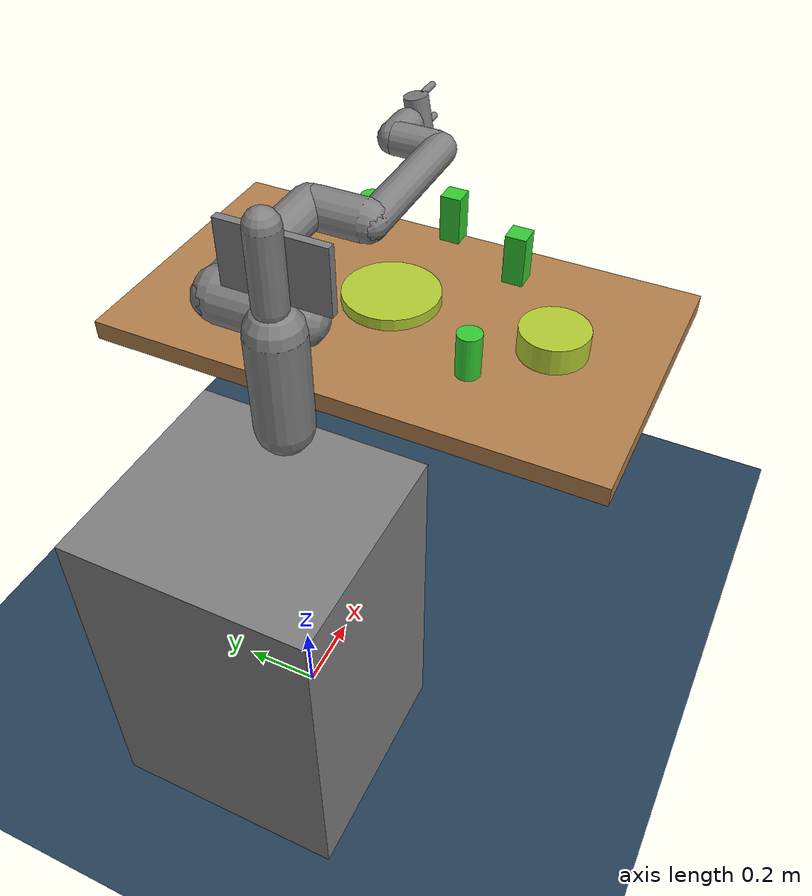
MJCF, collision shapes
<mujoco model="sawyer_kitchen_counter_scene">
  <include file="sawyer-gripper.xml"/>
  <include file="block_dependencies.xml"/>
  <include file="wall_dependencies.xml"/>

  <statistic center="0.3 0 0.4" extent="0.8"/>
  <option timestep="0.002" iterations="100" noslip_iterations="20"/>

  <visual>
    <headlight diffuse="0.6 0.6 0.6" ambient="0.3 0.3 0.3" specular="0 0 0"/>
    <rgba haze="0.15 0.25 0.35 1"/>
    <global azimuth="140" elevation="-20"/>
    <map znear="0.01" zfar="50.0"/>
  </visual>

  <asset>
    <texture type="skybox" builtin="gradient"
             rgb1="0.3 0.5 0.7" rgb2="0 0 0"
             width="512" height="3072"/>
    <texture type="2d" name="groundplane" builtin="checker"
             mark="edge"
             rgb1="0.2 0.3 0.4" rgb2="0.1 0.2 0.3"
             markrgb="0.8 0.8 0.8"
             width="300" height="300"/>
    <material name="groundplane" texture="groundplane"
              texuniform="true" texrepeat="5 5"
              reflectance="0.2"/>
  </asset>

  <asset>
    <texture name="T_table" type="cube" file="textures/wood2.png"/>
    <material name="table_wood" texture="T_table"
              shininess=".3" specular="0.5"/>

    <mesh name="tablebody" file="../meshes/table/tablebody.stl"/>
    <mesh name="tabletop" file="../meshes/table/tabletop.stl"/>
    <mesh name="ms_bowl_white"
      file="../../external_assets/mujoco_scanned_objects/models/Threshold_Bead_Cereal_Bowl_White/model.obj"/>
    <mesh name="ms_plate_ruby"
      file="../../external_assets/mujoco_scanned_objects/models/Threshold_Bistro_Ceramic_Dinner_Plate_Ruby_Ring/model.obj"/>
    <mesh name="ms_can_twinlab"
      file="../../external_assets/mujoco_scanned_objects/models/Twinlab_Premium_Creatine_Fuel_Powder/model.obj"/>
    <mesh name="ms_bottle_elderberry"
      file="../../external_assets/mujoco_scanned_objects/models/Black_Elderberry_Syrup_54_oz_Gaia_Herbs/model.obj"/>

  </asset>

  <worldbody>

    <light pos="0 0 1.5" dir="0 0 -1" directional="true"/>
    <geom name="floor" type="plane" size="0 0 0.05" material="groundplane"/>

    <!-- Table -->
    <body name="tablelink" pos="0.6 0 0.915" euler="0 0 1.5708">
      <geom name="table_surface" type="box"
            size="0.7 0.4 0.027"
            pos="0 0 -0.027"
            material="table_wood"
            contype="1" conaffinity="1"/>
      <geom name="table_body" type="mesh"
            mesh="tablebody"
            pos="0 0 -0.65"
            material="table_wood"
            contype="0" conaffinity="0"/>
    </body>

    <!-- ================= Kitchen Counter Objects (generated) ================= -->
  <body name="obj_6_bowl_pan_0" pos="0.6 -0.42 0.995" quat="0.707107 0 0 -0.707107">
    <joint type="free"/>
    <!-- SAFE inertial -->
    <inertial pos="0 0 0" mass="0.6" diaginertia="0.01 0.01 0.01"/>
    <!-- visual only -->
    <geom type="mesh" mesh="ms_bowl_white" pos="0 0 -0.075" contype="0" conaffinity="0"/>
    <!-- collision stays primitive -->
    <geom type="cylinder" size="0.0925 0.038" pos="0 0 -0.045"
      rgba="0.7 0.8 0.2 0.15"
      condim="4"
      friction="1.5 0.02 0.001"
      solref="0.02 1"
      solimp="0.95 0.95 0.01"/>
  </body>

  <body name="obj_1_bowl_0" pos="0.6215 0.0425 0.942" quat="0.707107 0 0 -0.707107">
    <joint type="free"/>
    <!-- SAFE inertial (guaranteed > mjMINVAL) -->
    <inertial pos="0 0 0" mass="0.2" diaginertia="0.001 0.001 0.001"/>
    <!-- visual only -->
    <geom type="mesh" mesh="ms_plate_ruby" pos="0 0 -0.03" contype="0" conaffinity="0"/>
    <!-- collision: keep primitive -->
    <geom type="cylinder" size="0.135 0.025" pos="0 0 -0.019" rgba="0.7 0.8 0.2 0.15" density="300.0"/>
  </body>

  <body name="obj_18_can_0" pos="0.43 -0.26 0.94575" quat="0.707107 0 0 -0.707107">
    <joint type="free"/>
    <inertial pos="0 0 0" mass="0.35" diaginertia="0.002 0.002 0.002"/>
    <geom type="mesh" mesh="ms_can_twinlab" pos="0 0 -0.03" contype="0" conaffinity="0"/>
    <geom type="cylinder" size="0.033 0.061" pos="0 0 0.03025" rgba="0.2 0.8 0.2 0.15" density="300.0"/>
  </body>

  <body name="obj_5_can_1" pos="0.44 0.22 0.94575" quat="0.707107 0 0 -0.707107">
    <joint type="free"/>
    <inertial pos="0 0 0" mass="0.35" diaginertia="0.002 0.002 0.002"/>
    <geom type="mesh" mesh="ms_can_twinlab" pos="0 0 -0.03" contype="0" conaffinity="0"/>
    <geom type="cylinder" size="0.033 0.061" pos="0 0 0.03025" rgba="0.2 0.8 0.2 0.15" density="300.0"/>
  </body>

  <body name="obj_16_bottle_0" pos="0.86 -0.22 0.9455" quat="0.707107 0 0 -0.707107">
    <joint type="free"/>
    <inertial pos="0 0 0" mass="0.45" diaginertia="0.003 0.003 0.003"/>
    <geom type="mesh" mesh="ms_bottle_elderberry" pos="0 0 -0.03" contype="0" conaffinity="0"/>
    <geom type="box"
        size="0.03 0.03 0.072"
        pos="0 0 0.0415"
        rgba="0.2 0.8 0.2 0.15"
        density="300.0"/>
  </body>

  <body name="obj_11_can_2" pos="0.90 0.24 0.9545" quat="0.707107 0 0 -0.707107">
    <joint type="free"/>
    <inertial pos="0 0 0" mass="0.35" diaginertia="0.002 0.002 0.002"/>
    <geom type="mesh" mesh="ms_can_twinlab" pos="0 0 -0.03"  contype="0" conaffinity="0"/>
    <geom type="cylinder" size="0.033 0.061" pos="0 0 0.0215" rgba="0.2 0.8 0.2 0.15" density="300.0"/>
  </body>

  <body name="obj_17_bottle_1" pos="0.98 0.02 0.9415" quat="0.707107 0 0 -0.707107">
    <joint type="free"/>
    <inertial pos="0 0 0" mass="0.45" diaginertia="0.003 0.003 0.003"/>
    <geom type="mesh" mesh="ms_bottle_elderberry" pos="0 0 -0.03" contype="0" conaffinity="0"/>
    <geom type="box"
        size="0.03 0.03 0.072"
        pos="0 0 0.0415"
        rgba="0.2 0.8 0.2 0.15"
        density="300.0"/>
  </body>

  <!-- TODO: Find real object model to replace these dummy objects -->
  <!-- Done! But maybe replace them with the official models from MesaTasks10K would be better-->

  </worldbody>
</mujoco>

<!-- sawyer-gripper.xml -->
<mujoco model="sawyer">
  <compiler angle="radian" autolimits="true"/>

  <option integrator="implicitfast"/>

  <default>
    <default class="sawyer">
      <material specular="0.5" shininess="0.25"/>
      <joint axis="0 0 1"/>
      <general dyntype="none" biastype="affine"/>
      <default class="visual">
        <geom group="2" type="mesh" contype="0" conaffinity="0"/>
      </default>
      <default class="collision">
        <geom group="3" type="capsule" rgba="0.5 0.5 0.5 1"/>
        <default class="eef_collision">
          <geom type="cylinder"/>
        </default>
      </default>
      <site size="0.001" rgba="0.5 0.5 0.5 0.3" group="4"/>

      <default class="large_joint">
        <joint frictionloss="0.3" armature="1" damping="0.1"/>
        <general gainprm="800" biasprm="0 -800 -80" forcerange="-80 80"/>
      </default>
      <default class="medium_joint">
        <joint frictionloss="0.3" armature="1" damping="0.1"/>
        <general gainprm="800" biasprm="0 -800 -80" forcerange="-40 40"/>
      </default>
      <default class="small_joint">
        <joint frictionloss="0.1" armature="1" damping="0.1"/>
        <general gainprm="500" biasprm="0 -500 -50" forcerange="-9 9"/>
      </default>
    </default>
  </default>

  <asset>
    <material class="sawyer" name="red" rgba="0.5 0.1 0.1 1"/>
    <material class="sawyer" name="black" rgba="0.2 0.2 0.2 1"/>
    <material class="sawyer" name="white" rgba="1 1 1 1"/>
    <material class="sawyer" name="off_white" rgba="0.792157 0.819608 0.929412 1"/>
    <material class="sawyer" name="Mtl3" rgba="0.168627 0.152941 0.141176 1"/>
    <material class="sawyer" name="Mtl4" rgba="1 0.403922 0.121569 1"/>
    <material class="sawyer" name="Mtl7" rgba="0.250980 0.250980 0.250980 1"/>
    <material class="sawyer" name="dark_black" specular="0.0" shininess="0.25" rgba="0 0 0 1"/>
    <material class="sawyer" name="Mtl5.001" rgba="0.870588 0.309804 0.086275 1"/>
    <material class="sawyer" name="Mtl7.001" rgba="0.698039 0.698039 0.698039 1"/>
    <material class="sawyer" name="Mtl5.002" rgba="0.105882 0.105882 0.105882 1"/>
    <material class="sawyer" name="Mtl6.002" rgba="0.749020 0.749020 0.749020 1"/>
    <material class="sawyer" name="Mtl4_001" rgba="0.866667 0.905882 1 1"/>
    <material class="sawyer" name="Mtl5_001" rgba="0.501961 0.501961 0.501961 1"/>

    <mesh file="../sawyer/assets/pedestal.obj"/>
    <mesh file="../sawyer/assets/base_0.obj"/>
    <mesh file="../sawyer/assets/base_1.obj"/>
    <mesh file="../sawyer/assets/l0_0.obj"/>
    <mesh file="../sawyer/assets/l0_1.obj"/>
    <mesh file="../sawyer/assets/l0_2.obj"/>
    <mesh file="../sawyer/assets/l0_3.obj"/>
    <mesh file="../sawyer/assets/l0_4.obj"/>
    <mesh file="../sawyer/assets/l0_5.obj"/>
    <mesh file="../sawyer/assets/l0_6.obj"/>
    <mesh file="../sawyer/assets/l1_0.obj"/>
    <mesh file="../sawyer/assets/l1_1.obj"/>
    <mesh file="../sawyer/assets/l1_2.obj"/>
    <mesh file="../sawyer/assets/l2_0.obj"/>
    <mesh file="../sawyer/assets/l2_1.obj"/>
    <mesh file="../sawyer/assets/l2_2.obj"/>
    <mesh file="../sawyer/assets/l2_3.obj"/>
    <mesh file="../sawyer/assets/l2_4.obj"/>
    <mesh file="../sawyer/assets/l3_0.obj"/>
    <mesh file="../sawyer/assets/l3_1.obj"/>
    <mesh file="../sawyer/assets/l3_2.obj"/>
    <mesh file="../sawyer/assets/l3_3.obj"/>
    <mesh file="../sawyer/assets/l4_0.obj"/>
    <mesh file="../sawyer/assets/l4_1.obj"/>
    <mesh file="../sawyer/assets/l4_2.obj"/>
    <mesh file="../sawyer/assets/l4_3.obj"/>
    <mesh file="../sawyer/assets/l4_4.obj"/>
    <mesh file="../sawyer/assets/l4_5.obj"/>
    <mesh file="../sawyer/assets/l4_6.obj"/>
    <mesh file="../sawyer/assets/l4_7.obj"/>
    <mesh file="../sawyer/assets/l5_0.obj"/>
    <mesh file="../sawyer/assets/l5_1.obj"/>
    <mesh file="../sawyer/assets/l5_2.obj"/>
    <mesh file="../sawyer/assets/l5_3.obj"/>
    <mesh file="../sawyer/assets/l5_4.obj"/>
    <mesh file="../sawyer/assets/l6_0.obj"/>
    <mesh file="../sawyer/assets/l6_1.obj"/>
    <mesh file="../sawyer/assets/l6_2.obj"/>
    <mesh file="../sawyer/assets/l6_3.obj"/>
    <mesh file="../sawyer/assets/l6_4.obj"/>
    <mesh file="../sawyer/assets/l6_5.obj"/>
    <mesh file="../sawyer/assets/head_0.obj"/>
    <mesh file="../sawyer/assets/head_2.obj"/>
    <mesh file="../sawyer/assets/head_3.obj"/>
    <mesh file="../sawyer/assets/head_5.obj"/>
    <mesh file="../sawyer/assets/head_6.obj"/>
    <mesh file="../sawyer/assets/head_7.obj"/>
    <mesh file="../sawyer/assets/head_8.obj"/>
    <mesh file="../sawyer/assets/head_9.obj"/>
    <mesh file="../sawyer/assets/gripper_body.obj"/>
    <mesh file="../sawyer/assets/gripper_finger_narrow.obj"/>
  </asset>

  <worldbody>
    <light name="top" pos="0 0 2" mode="trackcom"/>
    <body name="pedestal">
      <geom mesh="pedestal" material="black" class="visual"/>
      <geom class="collision" type="box" pos="-0.17 0 0.45" size="0.28 0.3 0.45"/>
      <body name="base" childclass="sawyer" pos="0 0 0.92">
        <inertial mass="2.0687" pos="-0.0006241 -2.8025E-05 0.065404"
          fullinertia="0.0067599 0.0067877 0.0074031 -4.2024E-05 -6.1904E-07 1.5888E-05"/>
        <geom mesh="base_0" material="black" class="visual"/>
        <geom mesh="base_1" material="red" class="visual"/>
        <body name="right_l0" pos="0 0 0.08">
          <inertial mass="5.3213" pos="0.0243645 0.0109688 0.143631" quat="0.894821 0.0089945 -0.17028 0.412576"
            diaginertia="0.0651599 0.0510954 0.0186221"/>
          <joint name="right_j0" class="large_joint" range="-3.0503 3.0503"/>
          <geom mesh="l0_0" material="Mtl7" class="visual"/>
          <geom mesh="l0_1" material="off_white" class="visual"/>
          <geom mesh="l0_2" material="red" class="visual"/>
          <geom mesh="l0_3" material="Mtl4" class="visual"/>
          <geom mesh="l0_4" material="Mtl3" class="visual"/>
          <geom mesh="l0_5" material="white" class="visual"/>
          <geom mesh="l0_6" material="black" class="visual"/>
          <geom class="collision" fromto="0 0 -0.005 0 0 0.25" size="0.07"/>
          <body name="head" pos="0 0 0.2965">
            <inertial mass="1.5795" pos="0.00532226 -2.65473e-05 0.1021"
              quat="0.999993 7.08384e-05 -0.00359812 -0.000626267" diaginertia="0.0118334 0.00827097 0.00496582"/>
            <geom mesh="head_0" material="black" class="visual"/>
            <geom mesh="head_2" material="off_white" class="visual"/>
            <geom mesh="head_3" material="Mtl7" class="visual"/>
            <geom mesh="head_5" material="black" class="visual"/>
            <geom mesh="head_6" material="white" class="visual"/>
            <geom mesh="head_7" material="dark_black" class="visual"/>
            <geom mesh="head_8" material="red" class="visual"/>
            <geom mesh="head_9" material="Mtl5.001" class="visual"/>
            <geom class="collision" fromto="-0.005 0 0.02 -0.005 0 0.205" size="0.04"/>
            <geom class="collision" type="box" pos="0.025 0 0.1" size="0.01 0.13 0.08"/>
          </body>
          <body name="right_l1" pos="0.081 0.05 0.237" quat="1 -1 1 1">
            <inertial mass="4.505" pos="-0.0030849 -0.026811 0.092521" quat="0.424888 0.891987 0.132364 -0.0794294"
              diaginertia="0.0224339 0.0221624 0.00970971"/>
            <joint name="right_j1" class="large_joint" range="-3.8095 2.2736"/>
            <geom mesh="l1_0" material="black" class="visual"/>
            <geom mesh="l1_1" material="red" class="visual"/>
            <geom mesh="l1_2" material="white" class="visual"/>
            <geom class="collision" fromto="0 0 -0.06 0 0 0.13" size="0.068"/>
            <body name="right_l2" pos="0 -0.14 0.1425" quat="1 1 0 0">
              <inertial mass="1.745" pos="-0.00016044 -0.014967 0.13582" quat="0.707831 -0.0524761 0.0516006 0.702537"
                diaginertia="0.0257928 0.025506 0.00292516"/>
              <joint name="right_j2" class="medium_joint" range="-3.0426 3.0426"/>
              <geom mesh="l2_0" material="off_white" class="visual"/>
              <geom mesh="l2_1" material="Mtl5.002" class="visual"/>
              <geom mesh="l2_2" material="white" class="visual"/>
              <geom mesh="l2_3" material="black" class="visual"/>
              <geom mesh="l2_4" material="red" class="visual"/>
              <geom class="collision" fromto="0 0 -0.15 0 0 0.26" size="0.055"/>
              <body name="right_l3" pos="0 -0.042 0.26" quat="1 -1 0 0">
                <inertial mass="2.5097" pos="-0.0048135 -0.0281 -0.084154" quat="0.902999 0.385391 -0.0880901 0.168247"
                  diaginertia="0.0102404 0.0096997 0.00369622"/>
                <joint name="right_j3" class="medium_joint" range="-3.0439 3.0439"/>
                <geom mesh="l3_0" material="off_white" class="visual"/>
                <geom mesh="l3_1" material="red" class="visual"/>
                <geom mesh="l3_2" material="white" class="visual"/>
                <geom mesh="l3_3" material="black" class="visual"/>
                <geom class="collision" fromto="0 0 -0.115 0 0 0.03" size="0.055"/>
                <body name="right_l4" pos="0 -0.125 -0.1265" quat="1 1 0 0">
                  <inertial mass="1.1136" pos="-0.00188917 0.00689948 0.134095"
                    quat="0.803247 0.031244 -0.0298409 0.594077" diaginertia="0.0136555 0.0135498 0.00127385"/>
                  <joint name="right_j4" class="small_joint" range="-2.9761 2.9761"/>
                  <geom mesh="l4_0" material="Mtl7" class="visual"/>
                  <geom mesh="l4_1" material="black" class="visual"/>
                  <geom mesh="l4_2" material="Mtl6.002" class="visual"/>
                  <geom mesh="l4_3" material="white" class="visual"/>
                  <geom mesh="l4_4" material="off_white" class="visual"/>
                  <geom mesh="l4_5" material="dark_black" class="visual"/>
                  <geom mesh="l4_6" material="red" class="visual"/>
                  <geom mesh="l4_7" material="black" class="visual"/>
                  <geom class="collision" fromto="0 0 -0.13 0 0 0.27" size="0.045"/>
                  <body name="right_l5" pos="0 0.031 0.275" quat="1 -1 0 0">
                    <inertial mass="1.5625" pos="0.0061133 -0.023697 0.076416" quat="0.404076 0.9135 0.0473125 0.00158335"
                      diaginertia="0.00474131 0.00422857 0.00190672"/>
                    <joint name="right_j5" class="small_joint" range="-2.9761 2.9761"/>
                    <geom mesh="l5_0" material="Mtl5_001" class="visual"/>
                    <geom mesh="l5_1" material="Mtl4_001" class="visual"/>
                    <geom mesh="l5_2" material="white" class="visual"/>
                    <geom mesh="l5_3" material="red" class="visual"/>
                    <geom mesh="l5_4" material="black" class="visual"/>
                    <geom fromto="0 0 -0.02 0 0 0.1" size="0.045" class="collision"/>
                    <geom fromto="0 0 0.105 0 -0.082 0.105" size="0.045" class="collision"/>
                    <body name="right_l6" pos="0 -0.11 0.1053" quat="0.0616248 0.06163 -0.704416 0.704416">
                      <inertial mass="0.3292" pos="-8.0726e-06 0.0085838 -0.0049566"
                        quat="0.479044 0.515636 -0.513069 0.491321" diaginertia="0.000360268 0.000311078 0.000214984"/>
                      <joint name="right_j6" class="small_joint" range="-4.7124 4.7124"/>
                      <geom mesh="l6_0" material="Mtl4" class="visual"/>
                      <geom mesh="l6_1" material="white" class="visual"/>
                      <geom mesh="l6_2" material="red" class="visual"/>
                      <geom mesh="l6_3" material="black" class="visual"/>
                      <geom mesh="l6_4" material="black" class="visual"/>
                      <geom mesh="l6_5" material="black" class="visual"/>
                      <site name="attachment_site" pos="0 0 0.0245" quat="0 0 0 1"/>
                      <body name="gripper_body" pos="0 0 0.02" quat="0.7071068 0 0 0.7071068">
                        <site name="end_effector" pos="0 0 0.0545" quat="0 0 0 1"/>
                        <inertial mass="0.3292" pos="0 0 0" quat="0 0 0 1" diaginertia="0.0003 0.0003 0.0003"/>
                        <geom mesh="gripper_body" material="red" class="visual"/>
                        <geom class="eef_collision" pos="0 0 0.024" quat="0.7071 0.7071 0 0" size="0.035 0.052"/>
                        <camera name="realsense_rgb" pos="0.05 0 0.05" euler="0 -3.1416 0" fovy="58"/>
                        <body name="gripper_finger_right" pos="0.002 0.028 0.045" quat="0 0 0 1">
                          <inertial mass="0.0907185" pos="0 0 0" quat="0 0 0 1" diaginertia="0.0003 0.0003 0.0003"/>
                          <geom mesh="gripper_finger_narrow" material="black" class="visual"/>
                          <joint name="gripper_right_close" type="slide" class="small_joint" pos="0 0 0" axis="0 1 0" range="0 0.035"/>
                          <geom class="eef_collision" pos="0.003 -0.0165 0.039" size="0.01 0.034"/>
                        </body>
                        <body name="gripper_finger_left" pos="0.0035 -0.028 0.045" quat="1 0 0 0">
                          <inertial mass="0.0907185" pos="0 0 0" quat="0 0 0 1" diaginertia="0.0000001 0.0000001 0.0000001"/>
                          <geom mesh="gripper_finger_narrow" material="black" class="visual"/>
                          <geom class="eef_collision" pos="0.003 -0.0165 0.039" size="0.01 0.034"/>
                          <joint name="gripper_left_close" type="slide" class="small_joint" pos="0 0 0" axis="0 1 0" range="0 0.035"/>
                        </body>
                      </body>
                    </body>
                  </body>
                </body>
              </body>
            </body>
          </body>
        </body>
      </body>
    </body>
  </worldbody>

  <contact>
    <exclude body1="base" body2="right_l0"/>
  </contact>

  <actuator>
    <general name="a0" joint="right_j0" class="large_joint" ctrlrange="-3.0503 3.0503"/>
    <general name="a1" joint="right_j1" class="large_joint" ctrlrange="-3.8095 2.2736"/>
    <general name="a2" joint="right_j2" class="medium_joint" ctrlrange="-3.0426 3.0426"/>
    <general name="a3" joint="right_j3" class="medium_joint" ctrlrange="-3.0439 3.0439"/>
    <general name="a4" joint="right_j4" class="small_joint" ctrlrange="-2.9761 2.9761"/>
    <general name="a5" joint="right_j5" class="small_joint" ctrlrange="-2.9761 2.9761"/>
    <general name="a6" joint="right_j6" class="small_joint" ctrlrange="-4.7124 4.7124"/>
    <general name="figer_right" joint="gripper_right_close" class="small_joint" ctrlrange="0 0.035"/>
    <general name="figer_left" joint="gripper_left_close" class="small_joint" ctrlrange="0 0.035"/>
  </actuator>

</mujoco>

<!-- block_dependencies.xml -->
<mujocoinclude>
    <compiler angle="radian" inertiafromgeom="auto" inertiagrouprange="4 5"/>
    <asset>
        <texture name="T_block_wood" type="cube" file="../textures/wood4.png"/>

      <material name="block_col" rgba="0.3 0.3 1.0 0.5" shininess="0" specular="0"/>
      <material name="block_wood" texture="T_block_wood" shininess="1" reflectance=".7" specular=".5"/>
      <material name="block_red" rgba=".8 0 0 1" shininess=".2" reflectance=".2" specular=".5"/>

    </asset>
    <default>
      <default class="block_base">
          <joint armature="0.001" damping="2" limited="true"/>
          <geom conaffinity="0" contype="0" group="1" type="mesh"/>
          <position ctrllimited="true" ctrlrange="0 1.57"/>
          <default class="block_col">
              <geom conaffinity="1" condim="4" contype="1" group="4" material="block_col" solimp="0.99 0.99 0.01" solref="0.01 1"/>
          </default>
      </default>
    </default>

    <asset>
      <mesh file="../sawyer/meshes/block/block.stl" name="block"/>
    </asset>

</mujocoinclude>

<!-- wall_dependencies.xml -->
<mujocoinclude>
    <compiler angle="radian" inertiafromgeom="auto" inertiagrouprange="4 5"/>
    <asset>
        <texture name="T_wallbrick" type="cube" file="textures/brick1.png"/>
      <material name="wall_col" rgba="0.3 0.3 1.0 0.5" shininess="0" specular="0"/>
      <material name="wall_brick" texture="T_wallbrick" shininess="1" reflectance=".7" specular=".5"/>
    </asset>
    <default>
      <default class="wall_base">
          <joint armature="0.001" damping="2" limited="true"/>
          <geom conaffinity="0" contype="0" group="1" type="mesh"/>
          <default class="wall_viz">
              <geom condim="4" type="mesh"/>
          </default>
          <default class="wall_col">
              <geom conaffinity="1" condim="3" contype="0" group="4" material="wall_col" solimp="0.99 0.99 0.01" solref="0.01 1"/>
          </default>

      </default>
    </default>

</mujocoinclude>
